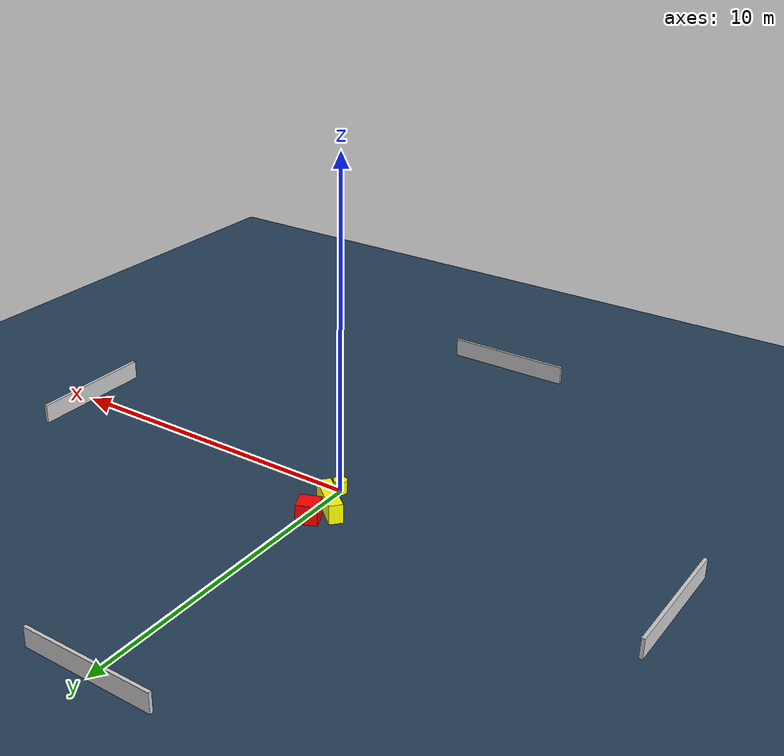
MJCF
<?xml version="1.0" ?>
<mujoco model="generated_environment">
  <option timestep="0.01" integrator="RK4" cone="elliptic"/>
  <default>
    <geom density="1"/>
  </default>
  <asset>
    <texture builtin="gradient" height="3072" name="skybox" rgb1="0.3 0.5 0.7" rgb2="0 0 0" type="skybox" width="512"/>
    <texture builtin="checker" height="300" name="groundplane" rgb1="0.2 0.3 0.4" rgb2="0.1 0.2 0.3" type="2d" width="300"/>
    <material name="groundplane" reflectance="0.2" texrepeat="5 5" texture="groundplane"/>
  </asset>
  <worldbody>
    <light dir="0 0 -1" directional="true" pos="0 0 1.5"/>
    <geom condim="3" friction="0.5 0.005 0.001" material="groundplane" name="floor" pos="0 0 0" size="0 0 0.05" type="plane"/>
    <body name="walls">
      <geom name="wall_1" condim="4" pos="-10.0 0.0 0.3" rgba="0.800000011920929 0.800000011920929 0.800000011920929 1.0" size="0.05 2.0 0.3" type="box"/>
      <geom name="wall_2" condim="4" pos="10.0 0.0 0.3" rgba="0.800000011920929 0.800000011920929 0.800000011920929 1.0" size="0.05 2.0 0.3" type="box"/>
      <geom name="wall_3" condim="4" pos="0.0 -10.0 0.3" rgba="0.800000011920929 0.800000011920929 0.800000011920929 1.0" size="2.0 0.05 0.3" type="box"/>
      <geom name="wall_4" condim="4" pos="0.0 10.0 0.3" rgba="0.800000011920929 0.800000011920929 0.800000011920929 1.0" size="2.0 0.05 0.3" type="box"/>
    </body>
    <body name="robot">
      <joint name="joint_x" type="slide" pos="0 0 0" axis="1 0 0"/>
      <joint name="joint_y" type="slide" pos="0 0 0" axis="0 1 0"/>
      <geom name="robot" type="cylinder" pos="0.0 0.0 0.2" size="0.2 0.2 0.0" mass="5.0" friction="1.0 0.005 0.0001" condim="4" rgba="1.0 1.0 0.0 1.0"/>
    </body>
    <body name="obstacle_1_movable">
      <geom name="obstacle_1_movable" condim="4" pos="-0.3345759144493456 0.9881005425972761 0.3" euler="0 0 139.4284646053971" friction="0.0 0.005 0.001" rgba="1.0 1.0 0.0 1.0" size="0.7157867969070542 0.20707668902210796 0.3" type="box" mass="0.1"/>
      <joint type="free"/>
    </body>
    <body name="obstacle_2_static">
      <geom name="obstacle_2_static" condim="4" pos="-0.13305995959279043 1.6990896824141812 0.3" euler="0 0 22.72117499438703" friction="0.0 0.005 0.001" rgba="1.0 0.0 0.0 1.0" size="0.31642907860530617 0.3008696691752044 0.3" type="box"/>
    </body>
  </worldbody>
  <actuator>
    <motor name="actuator_x" joint="joint_x" gear="1" ctrlrange="-1 1"/>
    <motor name="actuator_y" joint="joint_y" gear="1" ctrlrange="-1 1"/>
  </actuator>
</mujoco>
